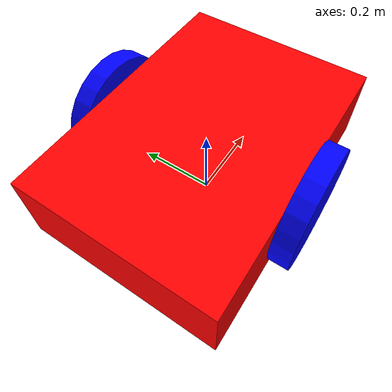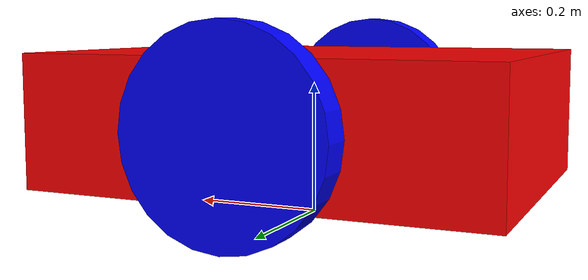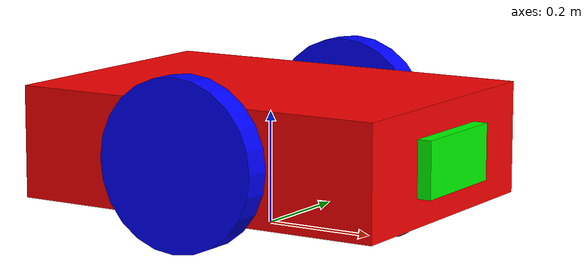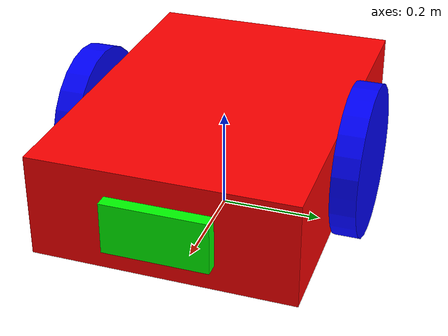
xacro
<?xml version="1.0" ?>
<robot name="bot" xmlns:xacro="http://www.ros.org/wiki/xacro">

    <xacro:include filename="$(find bot_description)/urdf/gazebo.xacro" />
    <xacro:include filename="$(find bot_description)/urdf/ros2_control.xacro" />
    <xacro:include filename="$(find bot_description)/urdf/bot_base.xacro" />
    <xacro:include filename="$(find bot_description)/urdf/bot_sensors.xacro" />

</robot>

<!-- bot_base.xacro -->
<robot name="bot" xmlns:xacro="http://www.ros.org/wiki/xacro">

    <link name="base_footprint"/>

    <link name="base_link">
        <inertial>
            <origin xyz="0 0 0" rpy="0 0 0"/>
            <mass value="5.0"/>
            <inertia ixx="0.1" ixy="0.0" ixz="0.0" iyy="0.1" iyz="0.0" izz="0.1"/>
        </inertial>
        <visual>
            <origin xyz="0.0 0.0 0.0" rpy="0.0 0.0 0.0"/>
            <geometry>
                <box size="0.7 0.5 0.2"/>
            </geometry>
            <material name="red">
                <color rgba="1.0 0.0 0.0 1.0"/>
            </material>
        </visual>
        <collision>
            <origin xyz="0.0 0.0 0.0" rpy="0.0 0.0 0.0"/>
            <geometry>
                <box size="0.7 0.5 0.2"/>
            </geometry>
        </collision>
    </link>

    <joint name="base_joint" type="fixed">
        <origin xyz="0.0 0.0 0.15" rpy="0.0 0.0 0.0"/>
        <parent link="base_footprint"/>
        <child link="base_link"/>
    </joint>

    <link name="right_wheel_link">
        <inertial>
            <origin xyz="0 0 0" rpy="0 0 0"/>
            <mass value="1.0"/>
            <inertia ixx="0.01" ixy="0.0" ixz="0.0" iyy="0.01" iyz="0.0" izz="0.01"/>
        </inertial>
        <visual>
            <origin xyz="0.0 0.0 0.0" rpy="0.0 0.0 0.0"/>
            <geometry>
                <cylinder radius="0.15" length="0.05"/>
            </geometry>
            <material name="blue">
                <color rgba="0.0 0.0 1.0 1.0"/>
            </material>
        </visual>
        <collision>
            <origin xyz="0.0 0.0 0.0" rpy="0.0 0.0 0.0"/>
            <geometry>
                <cylinder radius="0.15" length="0.05"/>
            </geometry>
        </collision>
    </link>

    <joint name="right_wheel_joint" type="continuous">
        <origin xyz="0.0 -0.275 0.0" rpy="1.57 0.0 0.0"/>
        <parent link="base_link"/>
        <child link="right_wheel_link"/>
        <axis xyz="0.0 0.0 -1.0"/>
    </joint>

    <link name="left_wheel_link">
        <inertial>
            <origin xyz="0 0 0" rpy="0 0 0"/>
            <mass value="1.0"/>
            <inertia ixx="0.01" ixy="0.0" ixz="0.0" iyy="0.01" iyz="0.0" izz="0.01"/>
        </inertial>
        <visual>
            <origin xyz="0.0 0.0 0.0" rpy="0.0 0.0 0.0"/>
            <geometry>
                <cylinder radius="0.15" length="0.05"/>
            </geometry>
            <material name="blue">
                <color rgba="0.0 0.0 1.0 1.0"/>
            </material>
        </visual>
        <collision>
            <origin xyz="0.0 0.0 0.0" rpy="0.0 0.0 0.0"/>
            <geometry>
                <cylinder radius="0.15" length="0.05"/>
            </geometry>
        </collision>
    </link>

    <joint name="left_wheel_joint" type="continuous">
        <origin xyz="0.0 0.275 0.0" rpy="1.57 0.0 0.0"/>
        <parent link="base_link"/>
        <child link="left_wheel_link"/>
        <axis xyz="0.0 0.0 -1.0"/>
    </joint>

    <link name="front_castor_link">
        <inertial>
            <origin xyz="0 0 0" rpy="0 0 0"/>
            <mass value="0.5"/>
            <inertia ixx="0.005" ixy="0.0" ixz="0.0" iyy="0.005" iyz="0.0" izz="0.005"/>
        </inertial>
        <visual>
            <origin xyz="0.0 0.0 0.0" rpy="0.0 0.0 0.0"/>
            <geometry>
                <sphere radius="0.045"/>
            </geometry>
            <material name="black">
                <color rgba="0.0 0.0 0.0 1.0"/>
            </material>
        </visual>
        <collision>
            <origin xyz="0.0 0.0 0.0" rpy="0.0 0.0 0.0"/>
            <geometry>
                <sphere radius="0.045"/>
            </geometry>
        </collision>
    </link>

    <joint name="front_castor_joint" type="fixed">
        <origin xyz="0.25 0.0 -0.1" rpy="0.0 0.0 0.0"/>
        <parent link="base_link"/>
        <child link="front_castor_link"/>
    </joint>

    <link name="back_castor_link">
        <inertial>
            <origin xyz="0 0 0" rpy="0 0 0"/>
            <mass value="0.5"/>
            <inertia ixx="0.005" ixy="0.0" ixz="0.0" iyy="0.005" iyz="0.0" izz="0.005"/>
        </inertial>
        <visual>
            <origin xyz="0.0 0.0 0.0" rpy="0.0 0.0 0.0"/>
            <geometry>
                <sphere radius="0.045"/>
            </geometry>
            <material name="black">
                <color rgba="0.0 0.0 0.0 1.0"/>
            </material>
        </visual>
        <collision>
            <origin xyz="0.0 0.0 0.0" rpy="0.0 0.0 0.0"/>
            <geometry>
                <sphere radius="0.045"/>
            </geometry>
        </collision>
    </link>

    <joint name="back_castor_joint" type="fixed">
        <origin xyz="-0.25 0.0 -0.1" rpy="0.0 0.0 0.0"/>
        <parent link="base_link"/>
        <child link="back_castor_link"/>
    </joint>

</robot>

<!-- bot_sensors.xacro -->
<robot name="bot" xmlns:xacro="http://www.ros.org/wiki/xacro">

    <link name="laser_link">
        <inertial>
            <origin xyz="0.0 0.0 0.0" rpy="0.0 0.0 0.0"/>
            <mass value="0.3"/>
            <inertia ixx="0.0002" ixy="0.0" ixz="0.0" iyy="0.0004" iyz="0.0" izz="0.0005"/>
        </inertial>
        <visual>
            <origin xyz="0.0 0.0 0.0" rpy="0.0 0.0 0.0"/>
            <geometry>
                <box size="0.05 0.2 0.1"/>
            </geometry>
            <material name="green">
                <color rgba="0.0 1.0 0.0 1.0"/>
            </material>
        </visual>
        <collision>
            <origin xyz="0.0 0.0 0.0" rpy="0.0 0.0 0.0"/>
            <geometry>
                <box size="0.05 0.2 0.1"/>
            </geometry>
        </collision>
    </link>

    <joint name="laser_joint" type="fixed">
        <origin xyz="0.35 0.0 0.0" rpy="0.0 0.0 0.0"/>
        <parent link="base_link"/>
        <child link="laser_link"/>
    </joint>

</robot>
